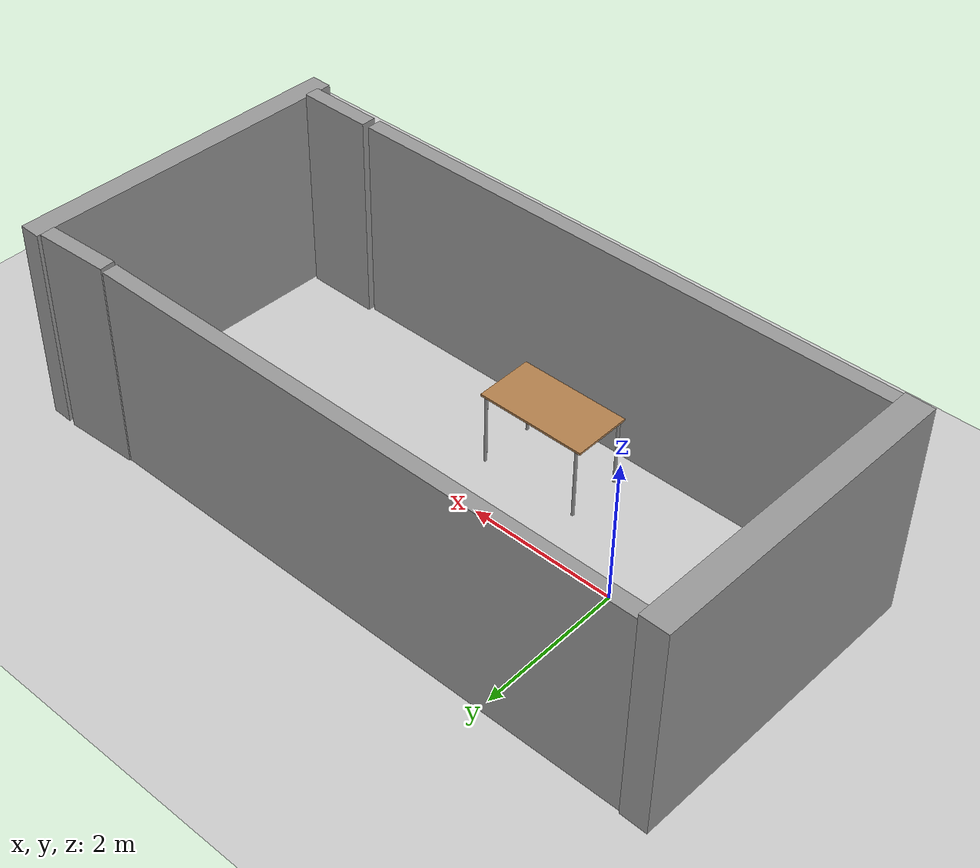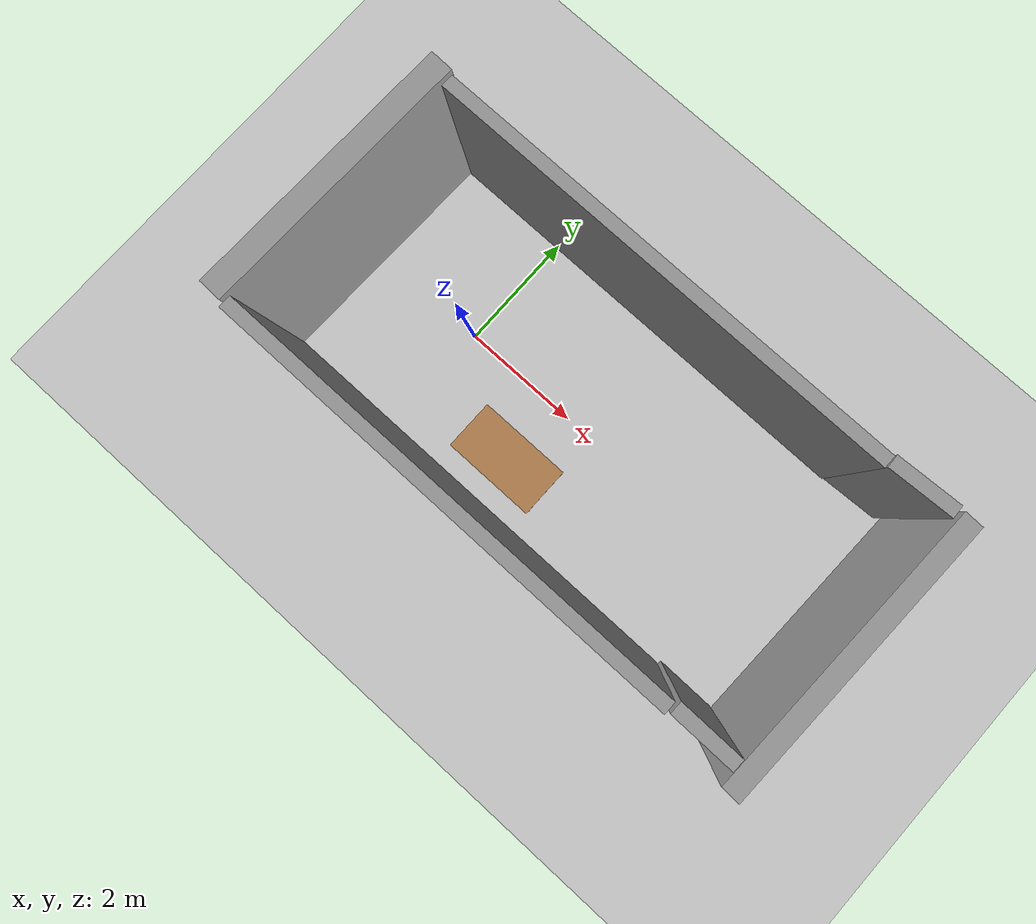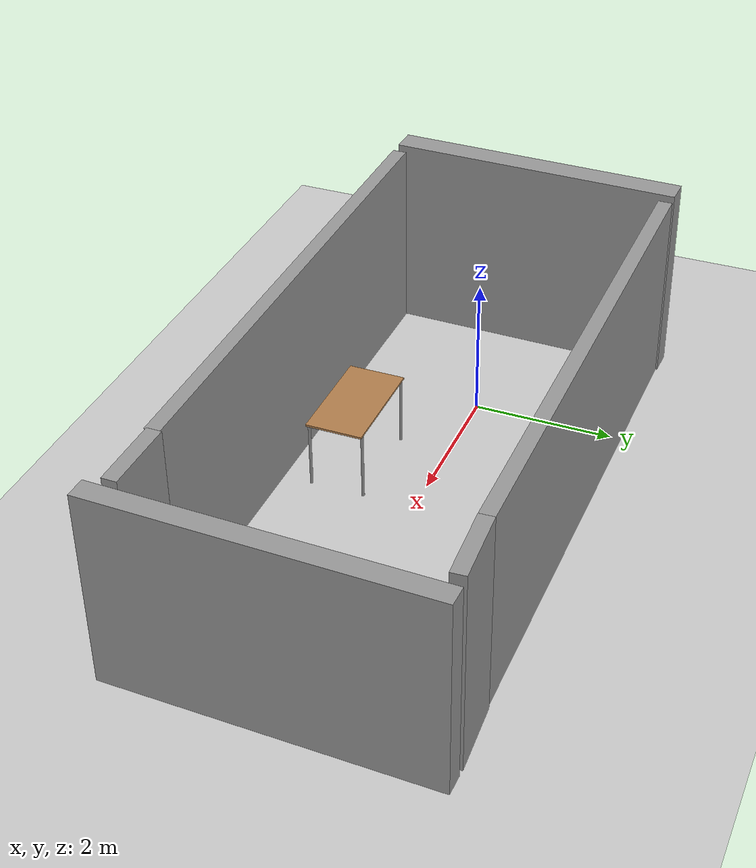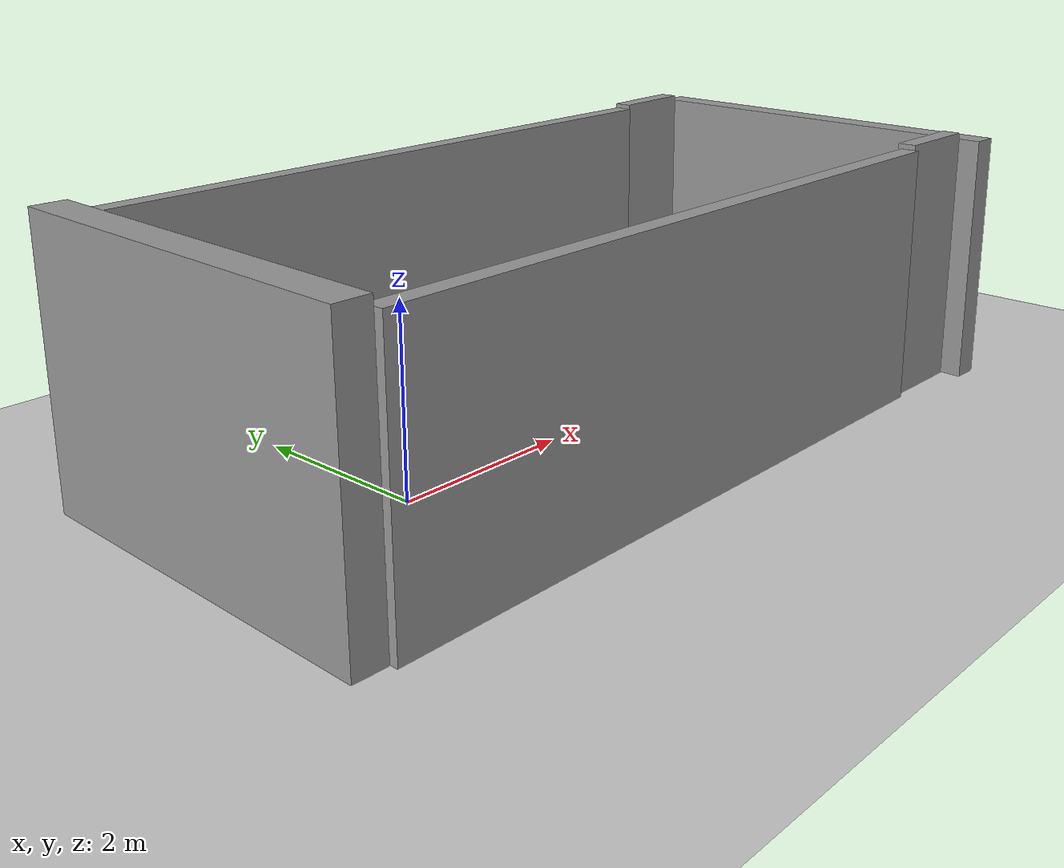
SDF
<sdf version="1.7">
 <world name="default">
  <light name="sun" type="directional">
   <pose>0 0 10 0 -0 0</pose>
   <diffuse>0.8 0.8 0.8 1</diffuse>
   <specular>0.2 0.2 0.2 1</specular>
   <attenuation>
    <range>1000</range>
    <constant>0.9</constant>
    <linear>0.01</linear>
    <quadratic>0.001</quadratic>
   </attenuation>
   <direction>-0.5 0.1 -0.9</direction>
   <spot><inner_angle>0</inner_angle><outer_angle>0</outer_angle><falloff>0</falloff></spot>
  </light>
  <model name="ground_plane">
   <static>1</static>
   <link name="link">
    <collision name="collision">
     <geometry><plane><normal>0 0 1</normal><size>100 100</size></plane></geometry>
     <surface>
      <contact><collide_bitmask>65535</collide_bitmask></contact>
      <friction><ode><mu>100</mu><mu2>50</mu2></ode></friction>
     </surface>
    </collision>
    <visual name="visual">
     <cast_shadows>0</cast_shadows>
     <geometry><plane><normal>0 0 1</normal><size>100 100</size></plane></geometry>
     <material>
      <script><uri>file://media/materials/scripts/gazebo.material</uri><name>Gazebo/Grey</name></script>
     </material>
    </visual>
   </link>
  </model>
  <gravity>0 0 -9.8</gravity>
  <magnetic_field>6e-06 2.3e-05 -4.2e-05</magnetic_field>
  <atmosphere type="adiabatic"/>
  <physics type="ode">
   <max_step_size>0.001</max_step_size>
   <real_time_factor>1</real_time_factor>
   <real_time_update_rate>1000</real_time_update_rate>
  </physics>
  <scene><ambient>0.4 0.4 0.4 1</ambient><background>0.7 0.7 0.7 1</background><shadows>1</shadows></scene>
  <audio><device>default</device></audio>
  <spherical_coordinates>
   <surface_model>EARTH_WGS84</surface_model>
   <latitude_deg>0</latitude_deg>
   <longitude_deg>0</longitude_deg>
   <elevation>0</elevation>
   <heading_deg>0</heading_deg>
  </spherical_coordinates>
  <model name="grey_wall">
   <static>1</static>
   <link name="link">
    <pose>0 0 1.4 0 -0 0</pose>
    <collision name="collision"><geometry><box><size>7.5 0.2 2.8</size></box></geometry></collision>
    <visual name="visual">
     <cast_shadows>0</cast_shadows>
     <geometry><box><size>7.5 0.2 2.8</size></box></geometry>
     <material>
      <script>
       <uri>model://grey_wall/materials/scripts</uri>
       <uri>model://grey_wall/materials/textures</uri>
       <name>vrc/grey_wall</name>
      </script>
     </material>
    </visual>
   </link>
   <pose>1.8603 2.05349 0 0 -0 0</pose>
  </model>
  <model name="grey_wall_clone">
   <static>1</static>
   <link name="link">
    <pose>0 0 1.4 0 -0 0</pose>
    <collision name="collision"><geometry><box><size>7.5 0.2 2.8</size></box></geometry></collision>
    <visual name="visual">
     <cast_shadows>0</cast_shadows>
     <geometry><box><size>7.5 0.2 2.8</size></box></geometry>
     <material>
      <script>
       <uri>model://grey_wall/materials/scripts</uri>
       <uri>model://grey_wall/materials/textures</uri>
       <name>vrc/grey_wall</name>
      </script>
     </material>
    </visual>
   </link>
   <pose>1.7731 -1.99282 0 0 -0 0</pose>
  </model>
  <model name="unit_box">
   <pose>-2.12045 0.085968 1.44905 -6.7e-05 -4e-06 -0.02219</pose>
   <link name="link">
    <inertial>
     <mass>1</mass>
     <inertia>
      <ixx>0.166667</ixx>
      <ixy>0</ixy>
      <ixz>0</ixz>
      <iyy>0.166667</iyy>
      <iyz>0</iyz>
      <izz>0.166667</izz>
     </inertia>
    </inertial>
    <collision name="collision"><geometry><box><size>0.362697 4.19167 2.89836</size></box></geometry></collision>
    <visual name="visual">
     <geometry><box><size>0.362697 4.19167 2.89836</size></box></geometry>
     <material>
      <script><name>Gazebo/Grey</name><uri>file://media/materials/scripts/gazebo.material</uri></script>
     </material>
    </visual>
   </link>
  </model>
  <model name="unit_box_0">
   <pose>6.05874 -1.93921 1.42417 -0 1e-06 -0.007349</pose>
   <link name="link">
    <inertial>
     <mass>1</mass>
     <inertia>
      <ixx>0.166667</ixx>
      <ixy>0</ixy>
      <ixz>0</ixz>
      <iyy>0.166667</iyy>
      <iyz>0</iyz>
      <izz>0.166667</izz>
     </inertia>
    </inertial>
    <collision name="collision"><geometry><box><size>1 0.199668 2.84835</size></box></geometry></collision>
    <visual name="visual">
     <geometry><box><size>1 0.199668 2.84835</size></box></geometry>
     <material>
      <script><name>Gazebo/Grey</name><uri>file://media/materials/scripts/gazebo.material</uri></script>
     </material>
    </visual>
   </link>
  </model>
  <model name="unit_box_0_clone">
   <pose>6.11373 2.09531 1.42417 3e-06 4e-06 0.048676</pose>
   <link name="link">
    <inertial>
     <mass>1</mass>
     <inertia>
      <ixx>0.166667</ixx>
      <ixy>0</ixy>
      <ixz>0</ixz>
      <iyy>0.166667</iyy>
      <iyz>0</iyz>
      <izz>0.166667</izz>
     </inertia>
    </inertial>
    <collision name="collision"><geometry><box><size>1 0.199668 2.84835</size></box></geometry></collision>
    <visual name="visual">
     <geometry><box><size>1 0.199668 2.84835</size></box></geometry>
     <material>
      <script><name>Gazebo/Grey</name><uri>file://media/materials/scripts/gazebo.material</uri></script>
     </material>
    </visual>
   </link>
  </model>
  <model name="unit_box_1">
   <pose>6.78463 -0.033268 1.38782 0.00013 6e-06 -0.025854</pose>
   <link name="link">
    <inertial>
     <mass>1</mass>
     <inertia>
      <ixx>0.166667</ixx>
      <ixy>0</ixy>
      <ixz>0</ixz>
      <iyy>0.166667</iyy>
      <iyz>0</iyz>
      <izz>0.166667</izz>
     </inertia>
    </inertial>
    <collision name="collision"><geometry><box><size>0.289757 4.48311 2.77622</size></box></geometry></collision>
    <visual name="visual">
     <geometry><box><size>0.289757 4.48311 2.77622</size></box></geometry>
     <material>
      <script><name>Gazebo/Grey</name><uri>file://media/materials/scripts/gazebo.material</uri></script>
     </material>
    </visual>
   </link>
  </model>
  <model name="table">
   <static>1</static>
   <link name="link">
    <collision name="surface">
     <pose>0 0 1 0 -0 0</pose>
     <geometry><box><size>1.5 0.8 0.03</size></box></geometry>
     <surface><friction><ode><mu>0.6</mu><mu2>0.6</mu2></ode></friction></surface>
    </collision>
    <visual name="visual1">
     <pose>0 0 1 0 -0 0</pose>
     <geometry><box><size>1.5 0.8 0.03</size></box></geometry>
     <material>
      <script><uri>file://media/materials/scripts/gazebo.material</uri><name>Gazebo/Wood</name></script>
     </material>
    </visual>
    <collision name="front_left_leg">
     <pose>0.68 0.38 0.5 0 -0 0</pose>
     <geometry><cylinder><radius>0.02</radius><length>1</length></cylinder></geometry>
    </collision>
    <visual name="front_left_leg">
     <pose>0.68 0.38 0.5 0 -0 0</pose>
     <geometry><cylinder><radius>0.02</radius><length>1</length></cylinder></geometry>
     <material>
      <script><uri>file://media/materials/scripts/gazebo.material</uri><name>Gazebo/Grey</name></script>
     </material>
    </visual>
    <collision name="front_right_leg">
     <pose>0.68 -0.38 0.5 0 -0 0</pose>
     <geometry><cylinder><radius>0.02</radius><length>1</length></cylinder></geometry>
    </collision>
    <visual name="front_right_leg">
     <pose>0.68 -0.38 0.5 0 -0 0</pose>
     <geometry><cylinder><radius>0.02</radius><length>1</length></cylinder></geometry>
     <material>
      <script><uri>file://media/materials/scripts/gazebo.material</uri><name>Gazebo/Grey</name></script>
     </material>
    </visual>
    <collision name="back_right_leg">
     <pose>-0.68 -0.38 0.5 0 -0 0</pose>
     <geometry><cylinder><radius>0.02</radius><length>1</length></cylinder></geometry>
    </collision>
    <visual name="back_right_leg">
     <pose>-0.68 -0.38 0.5 0 -0 0</pose>
     <geometry><cylinder><radius>0.02</radius><length>1</length></cylinder></geometry>
     <material>
      <script><uri>file://media/materials/scripts/gazebo.material</uri><name>Gazebo/Grey</name></script>
     </material>
    </visual>
    <collision name="back_left_leg">
     <pose>-0.68 0.38 0.5 0 -0 0</pose>
     <geometry><cylinder><radius>0.02</radius><length>1</length></cylinder></geometry>
    </collision>
    <visual name="back_left_leg">
     <pose>-0.68 0.38 0.5 0 -0 0</pose>
     <geometry><cylinder><radius>0.02</radius><length>1</length></cylinder></geometry>
     <material>
      <script><uri>file://media/materials/scripts/gazebo.material</uri><name>Gazebo/Grey</name></script>
     </material>
    </visual>
   </link>
   <pose>1.82522 -1.10515 0 0 -0 0</pose>
  </model>
 </world>
</sdf>
